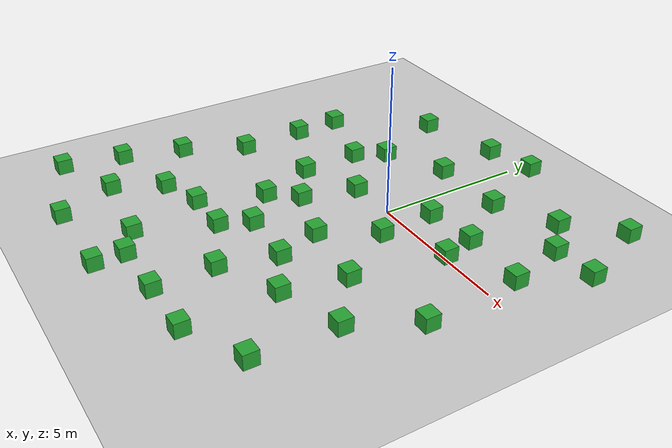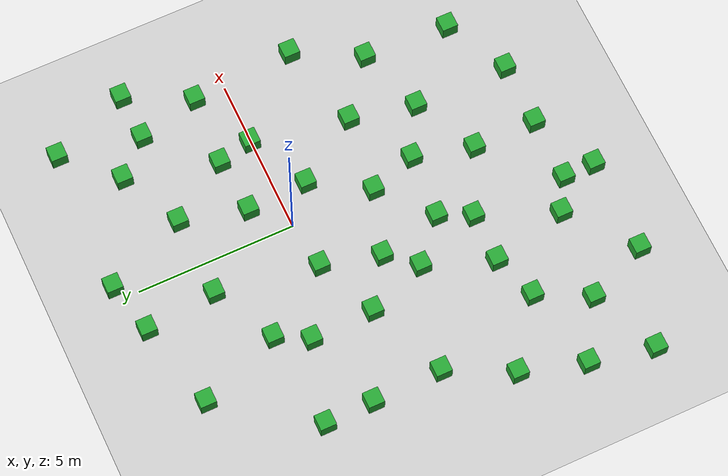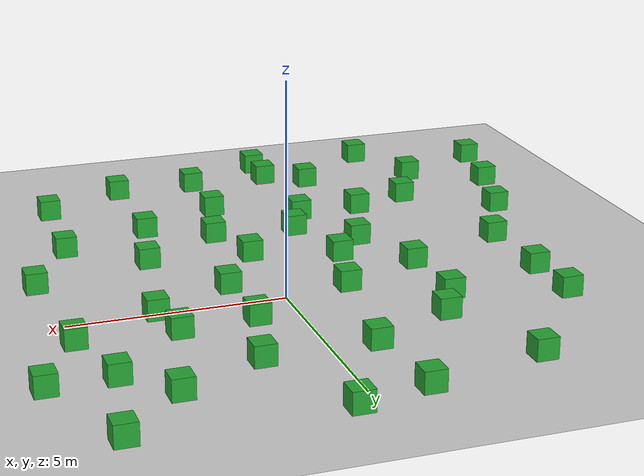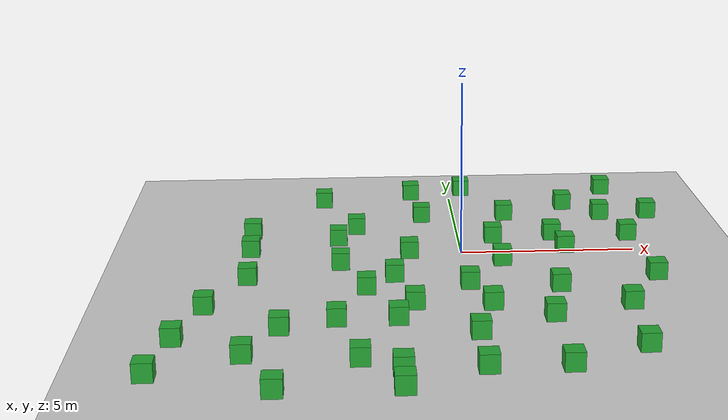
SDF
<sdf version="1.5">
 <world name="default">
  <spherical_coordinates>
   <latitude_deg>48.8789</latitude_deg>
   <longitude_deg>2.36778</longitude_deg>
   <surface_model>EARTH_WGS84</surface_model>
   <elevation>0</elevation>
   <heading_deg>0</heading_deg>
  </spherical_coordinates>
  <physics name="default_physics" default="0" type="ode">
   <real_time_update_rate>1000</real_time_update_rate>
   <max_step_size>0.001</max_step_size>
   <real_time_factor>1</real_time_factor>
   <max_contacts>20</max_contacts>
   <gravity>0 0 -9.81</gravity>
   <magnetic_field>0 2.1e-05 -4.3e-05</magnetic_field>
   <ode>
    <solver>
     <type>world</type>
     <min_step_size>0.0001</min_step_size>
     <iters>50</iters>
     <precon_iters>0</precon_iters>
     <sor>1.4</sor>
     <use_dynamic_moi_rescaling>1</use_dynamic_moi_rescaling>
    </solver>
    <constraints>
     <cfm>0</cfm>
     <erp>0.2</erp>
     <contact_max_correcting_vel>100</contact_max_correcting_vel>
     <contact_surface_layer>0.001</contact_surface_layer>
    </constraints>
   </ode>
  </physics>
  <atmosphere type="adiabatic">
   <temperature>298.15</temperature>
   <pressure>101325</pressure>
   <temperature_gradient>-0.0065</temperature_gradient>
  </atmosphere>
  <plugin name="wind" filename="libsphinx_wind.so">
   <magnitude_mean>0.0</magnitude_mean>
   <direction_mean>0.0</direction_mean>
   <elevation_mean>0.0</elevation_mean>
   <magnitude_time_for_rise>10.0</magnitude_time_for_rise>
   <direction_time_for_rise>30.0</direction_time_for_rise>
   <elevation_time_for_rise>0.0</elevation_time_for_rise>
   <magnitude_expr>val*(1+0.05*sin(2*pi*time/15))</magnitude_expr>
   <direction_expr>360*time/60</direction_expr>
   <elevation_expr>0.03*noise()</elevation_expr>
  </plugin>
  <light name="sun" type="directional">
   <pose>0 0 10 0 -0 0</pose>
   <diffuse>0.8 0.8 0.8 1</diffuse>
   <specular>0.2 0.2 0.2 1</specular>
   <attenuation>
    <range>1000</range>
    <constant>0.9</constant>
    <linear>0.01</linear>
    <quadratic>0.001</quadratic>
   </attenuation>
   <direction>-0.5 0.1 -0.9</direction>
  </light>
  <model name="ground_plane">
   <static>1</static>
   <link name="link">
    <collision name="collision">
     <geometry><plane><normal>0 0 1</normal><size>100 100</size></plane></geometry>
     <surface><friction><ode><mu>100</mu><mu2>50</mu2></ode></friction></surface>
    </collision>
    <visual name="visual">
     <cast_shadows>0</cast_shadows>
     <geometry><plane><normal>0 0 1</normal><size>100 100</size></plane></geometry>
     <material>
      <script><uri>file://media/materials/scripts/gazebo.material</uri><name>Gazebo/Grey</name></script>
     </material>
    </visual>
   </link>
  </model>
  <scene><ambient>0.4 0.4 0.4 1</ambient><background>0.7 0.7 0.7 1</background><shadows>0</shadows></scene>
  <model name="goal_box">
   <static>0</static>
   <pose>1.08169 -0.913257 0.25 0 -0 0</pose>
   <link name="goal_box">
    <inertial>
     <mass>1</mass>
     <inertia>
      <ixx>0.0166667</ixx>
      <iyy>0.0166667</iyy>
      <izz>0.0166667</izz>
      <ixy>0</ixy>
      <ixz>0</ixz>
      <iyz>0</iyz>
     </inertia>
    </inertial>
    <visual name="goal_box">
     <geometry><box><size>0.5 0.5 0.5</size></box></geometry>
     <material>
      <script><uri>file://media/materials/scripts/gazebo.material</uri><name>Gazebo/Green</name></script>
     </material>
    </visual>
    <collision name="collision">
     <geometry><box><size>0.5 0.5 0.5</size></box></geometry>
     <surface><friction><ode><mu>0</mu><mu2>0</mu2></ode></friction></surface>
    </collision>
   </link>
  </model>
  <model name="goal_box_clone">
   <static>0</static>
   <pose>2.76544 1.15096 0.25 0 -0 0</pose>
   <link name="goal_box">
    <inertial>
     <mass>1</mass>
     <inertia>
      <ixx>0.0166667</ixx>
      <iyy>0.0166667</iyy>
      <izz>0.0166667</izz>
      <ixy>0</ixy>
      <ixz>0</ixz>
      <iyz>0</iyz>
     </inertia>
    </inertial>
    <visual name="goal_box">
     <geometry><box><size>0.5 0.5 0.5</size></box></geometry>
     <material>
      <script><uri>file://media/materials/scripts/gazebo.material</uri><name>Gazebo/Green</name></script>
     </material>
    </visual>
    <collision name="collision">
     <geometry><box><size>0.5 0.5 0.5</size></box></geometry>
     <surface><friction><ode><mu>0</mu><mu2>0</mu2></ode></friction></surface>
    </collision>
   </link>
  </model>
  <model name="goal_box_clone_0">
   <static>0</static>
   <pose>3.00572 0.055078 0.25 0 -0 0</pose>
   <link name="goal_box">
    <inertial>
     <mass>1</mass>
     <inertia>
      <ixx>0.0166667</ixx>
      <iyy>0.0166667</iyy>
      <izz>0.0166667</izz>
      <ixy>0</ixy>
      <ixz>0</ixz>
      <iyz>0</iyz>
     </inertia>
    </inertial>
    <visual name="goal_box">
     <geometry><box><size>0.5 0.5 0.5</size></box></geometry>
     <material>
      <script><uri>file://media/materials/scripts/gazebo.material</uri><name>Gazebo/Green</name></script>
     </material>
    </visual>
    <collision name="collision">
     <geometry><box><size>0.5 0.5 0.5</size></box></geometry>
     <surface><friction><ode><mu>0</mu><mu2>0</mu2></ode></friction></surface>
    </collision>
   </link>
  </model>
  <model name="goal_box_clone_1">
   <static>0</static>
   <pose>1.54297 3.04749 0.25 0 -0 0</pose>
   <link name="goal_box">
    <inertial>
     <mass>1</mass>
     <inertia>
      <ixx>0.0166667</ixx>
      <iyy>0.0166667</iyy>
      <izz>0.0166667</izz>
      <ixy>0</ixy>
      <ixz>0</ixz>
      <iyz>0</iyz>
     </inertia>
    </inertial>
    <visual name="goal_box">
     <geometry><box><size>0.5 0.5 0.5</size></box></geometry>
     <material>
      <script><uri>file://media/materials/scripts/gazebo.material</uri><name>Gazebo/Green</name></script>
     </material>
    </visual>
    <collision name="collision">
     <geometry><box><size>0.5 0.5 0.5</size></box></geometry>
     <surface><friction><ode><mu>0</mu><mu2>0</mu2></ode></friction></surface>
    </collision>
   </link>
  </model>
  <model name="goal_box_clone_2">
   <static>0</static>
   <pose>1 1 0.25 0 -0 0</pose>
   <link name="goal_box">
    <inertial>
     <mass>1</mass>
     <inertia>
      <ixx>0.0166667</ixx>
      <iyy>0.0166667</iyy>
      <izz>0.0166667</izz>
      <ixy>0</ixy>
      <ixz>0</ixz>
      <iyz>0</iyz>
     </inertia>
    </inertial>
    <visual name="goal_box">
     <geometry><box><size>0.5 0.5 0.5</size></box></geometry>
     <material>
      <script><uri>file://media/materials/scripts/gazebo.material</uri><name>Gazebo/Green</name></script>
     </material>
    </visual>
    <collision name="collision">
     <geometry><box><size>0.5 0.5 0.5</size></box></geometry>
     <surface><friction><ode><mu>0</mu><mu2>0</mu2></ode></friction></surface>
    </collision>
   </link>
  </model>
  <model name="goal_box_clone_3">
   <static>0</static>
   <pose>5 5.4988 0.25 0 -0 0</pose>
   <link name="goal_box">
    <inertial>
     <mass>1</mass>
     <inertia>
      <ixx>0.0166667</ixx>
      <iyy>0.0166667</iyy>
      <izz>0.0166667</izz>
      <ixy>0</ixy>
      <ixz>0</ixz>
      <iyz>0</iyz>
     </inertia>
    </inertial>
    <visual name="goal_box">
     <geometry><box><size>0.5 0.5 0.5</size></box></geometry>
     <material>
      <script><uri>file://media/materials/scripts/gazebo.material</uri><name>Gazebo/Green</name></script>
     </material>
    </visual>
    <collision name="collision">
     <geometry><box><size>0.5 0.5 0.5</size></box></geometry>
     <surface><friction><ode><mu>0</mu><mu2>0</mu2></ode></friction></surface>
    </collision>
   </link>
  </model>
  <model name="goal_box_clone_4">
   <static>0</static>
   <pose>3.51124 4 0.25 0 -0 0</pose>
   <link name="goal_box">
    <inertial>
     <mass>1</mass>
     <inertia>
      <ixx>0.0166667</ixx>
      <iyy>0.0166667</iyy>
      <izz>0.0166667</izz>
      <ixy>0</ixy>
      <ixz>0</ixz>
      <iyz>0</iyz>
     </inertia>
    </inertial>
    <visual name="goal_box">
     <geometry><box><size>0.5 0.5 0.5</size></box></geometry>
     <material>
      <script><uri>file://media/materials/scripts/gazebo.material</uri><name>Gazebo/Green</name></script>
     </material>
    </visual>
    <collision name="collision">
     <geometry><box><size>0.5 0.5 0.5</size></box></geometry>
     <surface><friction><ode><mu>0</mu><mu2>0</mu2></ode></friction></surface>
    </collision>
   </link>
  </model>
  <model name="goal_box_clone_5">
   <static>0</static>
   <pose>6 3 0.25 0 -0 0</pose>
   <link name="goal_box">
    <inertial>
     <mass>1</mass>
     <inertia>
      <ixx>0.0166667</ixx>
      <iyy>0.0166667</iyy>
      <izz>0.0166667</izz>
      <ixy>0</ixy>
      <ixz>0</ixz>
      <iyz>0</iyz>
     </inertia>
    </inertial>
    <visual name="goal_box">
     <geometry><box><size>0.5 0.5 0.5</size></box></geometry>
     <material>
      <script><uri>file://media/materials/scripts/gazebo.material</uri><name>Gazebo/Green</name></script>
     </material>
    </visual>
    <collision name="collision">
     <geometry><box><size>0.5 0.5 0.5</size></box></geometry>
     <surface><friction><ode><mu>0</mu><mu2>0</mu2></ode></friction></surface>
    </collision>
   </link>
  </model>
  <model name="goal_box_clone_6">
   <static>0</static>
   <pose>5 1 0.25 0 -0 0</pose>
   <link name="goal_box">
    <inertial>
     <mass>1</mass>
     <inertia>
      <ixx>0.0166667</ixx>
      <iyy>0.0166667</iyy>
      <izz>0.0166667</izz>
      <ixy>0</ixy>
      <ixz>0</ixz>
      <iyz>0</iyz>
     </inertia>
    </inertial>
    <visual name="goal_box">
     <geometry><box><size>0.5 0.5 0.5</size></box></geometry>
     <material>
      <script><uri>file://media/materials/scripts/gazebo.material</uri><name>Gazebo/Green</name></script>
     </material>
    </visual>
    <collision name="collision">
     <geometry><box><size>0.5 0.5 0.5</size></box></geometry>
     <surface><friction><ode><mu>0</mu><mu2>0</mu2></ode></friction></surface>
    </collision>
   </link>
  </model>
  <model name="goal_box_clone_7">
   <static>0</static>
   <pose>4.52161 2.9465 0.25 0 -0 0</pose>
   <link name="goal_box">
    <inertial>
     <mass>1</mass>
     <inertia>
      <ixx>0.0166667</ixx>
      <iyy>0.0166667</iyy>
      <izz>0.0166667</izz>
      <ixy>0</ixy>
      <ixz>0</ixz>
      <iyz>0</iyz>
     </inertia>
    </inertial>
    <visual name="goal_box">
     <geometry><box><size>0.5 0.5 0.5</size></box></geometry>
     <material>
      <script><uri>file://media/materials/scripts/gazebo.material</uri><name>Gazebo/Green</name></script>
     </material>
    </visual>
    <collision name="collision">
     <geometry><box><size>0.5 0.5 0.5</size></box></geometry>
     <surface><friction><ode><mu>0</mu><mu2>0</mu2></ode></friction></surface>
    </collision>
   </link>
  </model>
  <model name="goal_box_clone_8">
   <static>0</static>
   <pose>2.43973 -2.96384 0.25 0 -0 0</pose>
   <link name="goal_box">
    <inertial>
     <mass>1</mass>
     <inertia>
      <ixx>0.0166667</ixx>
      <iyy>0.0166667</iyy>
      <izz>0.0166667</izz>
      <ixy>0</ixy>
      <ixz>0</ixz>
      <iyz>0</iyz>
     </inertia>
    </inertial>
    <visual name="goal_box">
     <geometry><box><size>0.5 0.5 0.5</size></box></geometry>
     <material>
      <script><uri>file://media/materials/scripts/gazebo.material</uri><name>Gazebo/Green</name></script>
     </material>
    </visual>
    <collision name="collision">
     <geometry><box><size>0.5 0.5 0.5</size></box></geometry>
     <surface><friction><ode><mu>0</mu><mu2>0</mu2></ode></friction></surface>
    </collision>
   </link>
  </model>
  <model name="goal_box_clone_9">
   <static>0</static>
   <pose>0.495163 -4.14676 0.25 0 -0 0</pose>
   <link name="goal_box">
    <inertial>
     <mass>1</mass>
     <inertia>
      <ixx>0.0166667</ixx>
      <iyy>0.0166667</iyy>
      <izz>0.0166667</izz>
      <ixy>0</ixy>
      <ixz>0</ixz>
      <iyz>0</iyz>
     </inertia>
    </inertial>
    <visual name="goal_box">
     <geometry><box><size>0.5 0.5 0.5</size></box></geometry>
     <material>
      <script><uri>file://media/materials/scripts/gazebo.material</uri><name>Gazebo/Green</name></script>
     </material>
    </visual>
    <collision name="collision">
     <geometry><box><size>0.5 0.5 0.5</size></box></geometry>
     <surface><friction><ode><mu>0</mu><mu2>0</mu2></ode></friction></surface>
    </collision>
   </link>
  </model>
  <model name="goal_box_clone_10">
   <static>0</static>
   <pose>0.019492 -2.65687 0.25 0 -0 0</pose>
   <link name="goal_box">
    <inertial>
     <mass>1</mass>
     <inertia>
      <ixx>0.0166667</ixx>
      <iyy>0.0166667</iyy>
      <izz>0.0166667</izz>
      <ixy>0</ixy>
      <ixz>0</ixz>
      <iyz>0</iyz>
     </inertia>
    </inertial>
    <visual name="goal_box">
     <geometry><box><size>0.5 0.5 0.5</size></box></geometry>
     <material>
      <script><uri>file://media/materials/scripts/gazebo.material</uri><name>Gazebo/Green</name></script>
     </material>
    </visual>
    <collision name="collision">
     <geometry><box><size>0.5 0.5 0.5</size></box></geometry>
     <surface><friction><ode><mu>0</mu><mu2>0</mu2></ode></friction></surface>
    </collision>
   </link>
  </model>
  <model name="goal_box_clone_11">
   <static>0</static>
   <pose>2 -5 0.25 0 -0 0</pose>
   <link name="goal_box">
    <inertial>
     <mass>1</mass>
     <inertia>
      <ixx>0.0166667</ixx>
      <iyy>0.0166667</iyy>
      <izz>0.0166667</izz>
      <ixy>0</ixy>
      <ixz>0</ixz>
      <iyz>0</iyz>
     </inertia>
    </inertial>
    <visual name="goal_box">
     <geometry><box><size>0.5 0.5 0.5</size></box></geometry>
     <material>
      <script><uri>file://media/materials/scripts/gazebo.material</uri><name>Gazebo/Green</name></script>
     </material>
    </visual>
    <collision name="collision">
     <geometry><box><size>0.5 0.5 0.5</size></box></geometry>
     <surface><friction><ode><mu>0</mu><mu2>0</mu2></ode></friction></surface>
    </collision>
   </link>
  </model>
  <model name="goal_box_clone_12">
   <static>0</static>
   <pose>5.21587 -2.25185 0.25 0 -0 0</pose>
   <link name="goal_box">
    <inertial>
     <mass>1</mass>
     <inertia>
      <ixx>0.0166667</ixx>
      <iyy>0.0166667</iyy>
      <izz>0.0166667</izz>
      <ixy>0</ixy>
      <ixz>0</ixz>
      <iyz>0</iyz>
     </inertia>
    </inertial>
    <visual name="goal_box">
     <geometry><box><size>0.5 0.5 0.5</size></box></geometry>
     <material>
      <script><uri>file://media/materials/scripts/gazebo.material</uri><name>Gazebo/Green</name></script>
     </material>
    </visual>
    <collision name="collision">
     <geometry><box><size>0.5 0.5 0.5</size></box></geometry>
     <surface><friction><ode><mu>0</mu><mu2>0</mu2></ode></friction></surface>
    </collision>
   </link>
  </model>
  <model name="goal_box_clone_13">
   <static>0</static>
   <pose>4.13548 -4.2925 0.25 0 -0 0</pose>
   <link name="goal_box">
    <inertial>
     <mass>1</mass>
     <inertia>
      <ixx>0.0166667</ixx>
      <iyy>0.0166667</iyy>
      <izz>0.0166667</izz>
      <ixy>0</ixy>
      <ixz>0</ixz>
      <iyz>0</iyz>
     </inertia>
    </inertial>
    <visual name="goal_box">
     <geometry><box><size>0.5 0.5 0.5</size></box></geometry>
     <material>
      <script><uri>file://media/materials/scripts/gazebo.material</uri><name>Gazebo/Green</name></script>
     </material>
    </visual>
    <collision name="collision">
     <geometry><box><size>0.5 0.5 0.5</size></box></geometry>
     <surface><friction><ode><mu>0</mu><mu2>0</mu2></ode></friction></surface>
    </collision>
   </link>
  </model>
  <model name="goal_box_clone_14">
   <static>0</static>
   <pose>-1.51482 -0.176208 0.25 0 -0 0</pose>
   <link name="goal_box">
    <inertial>
     <mass>1</mass>
     <inertia>
      <ixx>0.0166667</ixx>
      <iyy>0.0166667</iyy>
      <izz>0.0166667</izz>
      <ixy>0</ixy>
      <ixz>0</ixz>
      <iyz>0</iyz>
     </inertia>
    </inertial>
    <visual name="goal_box">
     <geometry><box><size>0.5 0.5 0.5</size></box></geometry>
     <material>
      <script><uri>file://media/materials/scripts/gazebo.material</uri><name>Gazebo/Green</name></script>
     </material>
    </visual>
    <collision name="collision">
     <geometry><box><size>0.5 0.5 0.5</size></box></geometry>
     <surface><friction><ode><mu>0</mu><mu2>0</mu2></ode></friction></surface>
    </collision>
   </link>
  </model>
  <model name="goal_box_clone_15">
   <static>0</static>
   <pose>-1 3 0.25 0 -0 0</pose>
   <link name="goal_box">
    <inertial>
     <mass>1</mass>
     <inertia>
      <ixx>0.0166667</ixx>
      <iyy>0.0166667</iyy>
      <izz>0.0166667</izz>
      <ixy>0</ixy>
      <ixz>0</ixz>
      <iyz>0</iyz>
     </inertia>
    </inertial>
    <visual name="goal_box">
     <geometry><box><size>0.5 0.5 0.5</size></box></geometry>
     <material>
      <script><uri>file://media/materials/scripts/gazebo.material</uri><name>Gazebo/Green</name></script>
     </material>
    </visual>
    <collision name="collision">
     <geometry><box><size>0.5 0.5 0.5</size></box></geometry>
     <surface><friction><ode><mu>0</mu><mu2>0</mu2></ode></friction></surface>
    </collision>
   </link>
  </model>
  <model name="goal_box_clone_16">
   <static>0</static>
   <pose>-3 2 0.25 0 -0 0</pose>
   <link name="goal_box">
    <inertial>
     <mass>1</mass>
     <inertia>
      <ixx>0.0166667</ixx>
      <iyy>0.0166667</iyy>
      <izz>0.0166667</izz>
      <ixy>0</ixy>
      <ixz>0</ixz>
      <iyz>0</iyz>
     </inertia>
    </inertial>
    <visual name="goal_box">
     <geometry><box><size>0.5 0.5 0.5</size></box></geometry>
     <material>
      <script><uri>file://media/materials/scripts/gazebo.material</uri><name>Gazebo/Green</name></script>
     </material>
    </visual>
    <collision name="collision">
     <geometry><box><size>0.5 0.5 0.5</size></box></geometry>
     <surface><friction><ode><mu>0</mu><mu2>0</mu2></ode></friction></surface>
    </collision>
   </link>
  </model>
  <model name="goal_box_clone_17">
   <static>0</static>
   <pose>-3.47392 -1 0.25 0 -0 0</pose>
   <link name="goal_box">
    <inertial>
     <mass>1</mass>
     <inertia>
      <ixx>0.0166667</ixx>
      <iyy>0.0166667</iyy>
      <izz>0.0166667</izz>
      <ixy>0</ixy>
      <ixz>0</ixz>
      <iyz>0</iyz>
     </inertia>
    </inertial>
    <visual name="goal_box">
     <geometry><box><size>0.5 0.5 0.5</size></box></geometry>
     <material>
      <script><uri>file://media/materials/scripts/gazebo.material</uri><name>Gazebo/Green</name></script>
     </material>
    </visual>
    <collision name="collision">
     <geometry><box><size>0.5 0.5 0.5</size></box></geometry>
     <surface><friction><ode><mu>0</mu><mu2>0</mu2></ode></friction></surface>
    </collision>
   </link>
  </model>
  <model name="goal_box_clone_18">
   <static>0</static>
   <pose>-3.53588 1 0.25 0 -0 0</pose>
   <link name="goal_box">
    <inertial>
     <mass>1</mass>
     <inertia>
      <ixx>0.0166667</ixx>
      <iyy>0.0166667</iyy>
      <izz>0.0166667</izz>
      <ixy>0</ixy>
      <ixz>0</ixz>
      <iyz>0</iyz>
     </inertia>
    </inertial>
    <visual name="goal_box">
     <geometry><box><size>0.5 0.5 0.5</size></box></geometry>
     <material>
      <script><uri>file://media/materials/scripts/gazebo.material</uri><name>Gazebo/Green</name></script>
     </material>
    </visual>
    <collision name="collision">
     <geometry><box><size>0.5 0.5 0.5</size></box></geometry>
     <surface><friction><ode><mu>0</mu><mu2>0</mu2></ode></friction></surface>
    </collision>
   </link>
  </model>
  <model name="goal_box_clone_19">
   <static>0</static>
   <pose>-2.78282 -2.88237 0.25 0 -0 0</pose>
   <link name="goal_box">
    <inertial>
     <mass>1</mass>
     <inertia>
      <ixx>0.0166667</ixx>
      <iyy>0.0166667</iyy>
      <izz>0.0166667</izz>
      <ixy>0</ixy>
      <ixz>0</ixz>
      <iyz>0</iyz>
     </inertia>
    </inertial>
    <visual name="goal_box">
     <geometry><box><size>0.5 0.5 0.5</size></box></geometry>
     <material>
      <script><uri>file://media/materials/scripts/gazebo.material</uri><name>Gazebo/Green</name></script>
     </material>
    </visual>
    <collision name="collision">
     <geometry><box><size>0.5 0.5 0.5</size></box></geometry>
     <surface><friction><ode><mu>0</mu><mu2>0</mu2></ode></friction></surface>
    </collision>
   </link>
  </model>
  <model name="goal_box_clone_20">
   <static>0</static>
   <pose>-2 -2 0.25 0 -0 0</pose>
   <link name="goal_box">
    <inertial>
     <mass>1</mass>
     <inertia>
      <ixx>0.0166667</ixx>
      <iyy>0.0166667</iyy>
      <izz>0.0166667</izz>
      <ixy>0</ixy>
      <ixz>0</ixz>
      <iyz>0</iyz>
     </inertia>
    </inertial>
    <visual name="goal_box">
     <geometry><box><size>0.5 0.5 0.5</size></box></geometry>
     <material>
      <script><uri>file://media/materials/scripts/gazebo.material</uri><name>Gazebo/Green</name></script>
     </material>
    </visual>
    <collision name="collision">
     <geometry><box><size>0.5 0.5 0.5</size></box></geometry>
     <surface><friction><ode><mu>0</mu><mu2>0</mu2></ode></friction></surface>
    </collision>
   </link>
  </model>
  <model name="goal_box_clone_21">
   <static>0</static>
   <pose>-2 -5 0.25 0 -0 0</pose>
   <link name="goal_box">
    <inertial>
     <mass>1</mass>
     <inertia>
      <ixx>0.0166667</ixx>
      <iyy>0.0166667</iyy>
      <izz>0.0166667</izz>
      <ixy>0</ixy>
      <ixz>0</ixz>
      <iyz>0</iyz>
     </inertia>
    </inertial>
    <visual name="goal_box">
     <geometry><box><size>0.5 0.5 0.5</size></box></geometry>
     <material>
      <script><uri>file://media/materials/scripts/gazebo.material</uri><name>Gazebo/Green</name></script>
     </material>
    </visual>
    <collision name="collision">
     <geometry><box><size>0.5 0.5 0.5</size></box></geometry>
     <surface><friction><ode><mu>0</mu><mu2>0</mu2></ode></friction></surface>
    </collision>
   </link>
  </model>
  <model name="goal_box_clone_22">
   <static>0</static>
   <pose>-1.53227 -4 0.25 0 -0 0</pose>
   <link name="goal_box">
    <inertial>
     <mass>1</mass>
     <inertia>
      <ixx>0.0166667</ixx>
      <iyy>0.0166667</iyy>
      <izz>0.0166667</izz>
      <ixy>0</ixy>
      <ixz>0</ixz>
      <iyz>0</iyz>
     </inertia>
    </inertial>
    <visual name="goal_box">
     <geometry><box><size>0.5 0.5 0.5</size></box></geometry>
     <material>
      <script><uri>file://media/materials/scripts/gazebo.material</uri><name>Gazebo/Green</name></script>
     </material>
    </visual>
    <collision name="collision">
     <geometry><box><size>0.5 0.5 0.5</size></box></geometry>
     <surface><friction><ode><mu>0</mu><mu2>0</mu2></ode></friction></surface>
    </collision>
   </link>
  </model>
  <model name="goal_box_clone_23">
   <static>0</static>
   <pose>-1.2305 5.24788 0.25 0 -0 0</pose>
   <link name="goal_box">
    <inertial>
     <mass>1</mass>
     <inertia>
      <ixx>0.0166667</ixx>
      <iyy>0.0166667</iyy>
      <izz>0.0166667</izz>
      <ixy>0</ixy>
      <ixz>0</ixz>
      <iyz>0</iyz>
     </inertia>
    </inertial>
    <visual name="goal_box">
     <geometry><box><size>0.5 0.5 0.5</size></box></geometry>
     <material>
      <script><uri>file://media/materials/scripts/gazebo.material</uri><name>Gazebo/Green</name></script>
     </material>
    </visual>
    <collision name="collision">
     <geometry><box><size>0.5 0.5 0.5</size></box></geometry>
     <surface><friction><ode><mu>0</mu><mu2>0</mu2></ode></friction></surface>
    </collision>
   </link>
  </model>
  <model name="goal_box_clone_24">
   <static>0</static>
   <pose>0.413814 5.62893 0.25 0 -0 0</pose>
   <link name="goal_box">
    <inertial>
     <mass>1</mass>
     <inertia>
      <ixx>0.0166667</ixx>
      <iyy>0.0166667</iyy>
      <izz>0.0166667</izz>
      <ixy>0</ixy>
      <ixz>0</ixz>
      <iyz>0</iyz>
     </inertia>
    </inertial>
    <visual name="goal_box">
     <geometry><box><size>0.5 0.5 0.5</size></box></geometry>
     <material>
      <script><uri>file://media/materials/scripts/gazebo.material</uri><name>Gazebo/Green</name></script>
     </material>
    </visual>
    <collision name="collision">
     <geometry><box><size>0.5 0.5 0.5</size></box></geometry>
     <surface><friction><ode><mu>0</mu><mu2>0</mu2></ode></friction></surface>
    </collision>
   </link>
  </model>
  <model name="goal_box_clone_25">
   <static>0</static>
   <pose>-4 4.58687 0.25 0 -0 0</pose>
   <link name="goal_box">
    <inertial>
     <mass>1</mass>
     <inertia>
      <ixx>0.0166667</ixx>
      <iyy>0.0166667</iyy>
      <izz>0.0166667</izz>
      <ixy>0</ixy>
      <ixz>0</ixz>
      <iyz>0</iyz>
     </inertia>
    </inertial>
    <visual name="goal_box">
     <geometry><box><size>0.5 0.5 0.5</size></box></geometry>
     <material>
      <script><uri>file://media/materials/scripts/gazebo.material</uri><name>Gazebo/Green</name></script>
     </material>
    </visual>
    <collision name="collision">
     <geometry><box><size>0.5 0.5 0.5</size></box></geometry>
     <surface><friction><ode><mu>0</mu><mu2>0</mu2></ode></friction></surface>
    </collision>
   </link>
  </model>
  <model name="goal_box_clone_26">
   <static>0</static>
   <pose>-6.07416 1.73526 0.25 0 -0 0</pose>
   <link name="goal_box">
    <inertial>
     <mass>1</mass>
     <inertia>
      <ixx>0.0166667</ixx>
      <iyy>0.0166667</iyy>
      <izz>0.0166667</izz>
      <ixy>0</ixy>
      <ixz>0</ixz>
      <iyz>0</iyz>
     </inertia>
    </inertial>
    <visual name="goal_box">
     <geometry><box><size>0.5 0.5 0.5</size></box></geometry>
     <material>
      <script><uri>file://media/materials/scripts/gazebo.material</uri><name>Gazebo/Green</name></script>
     </material>
    </visual>
    <collision name="collision">
     <geometry><box><size>0.5 0.5 0.5</size></box></geometry>
     <surface><friction><ode><mu>0</mu><mu2>0</mu2></ode></friction></surface>
    </collision>
   </link>
  </model>
  <model name="goal_box_clone_27">
   <static>0</static>
   <pose>-6 -2 0.25 0 -0 0</pose>
   <link name="goal_box">
    <inertial>
     <mass>1</mass>
     <inertia>
      <ixx>0.0166667</ixx>
      <iyy>0.0166667</iyy>
      <izz>0.0166667</izz>
      <ixy>0</ixy>
      <ixz>0</ixz>
      <iyz>0</iyz>
     </inertia>
    </inertial>
    <visual name="goal_box">
     <geometry><box><size>0.5 0.5 0.5</size></box></geometry>
     <material>
      <script><uri>file://media/materials/scripts/gazebo.material</uri><name>Gazebo/Green</name></script>
     </material>
    </visual>
    <collision name="collision">
     <geometry><box><size>0.5 0.5 0.5</size></box></geometry>
     <surface><friction><ode><mu>0</mu><mu2>0</mu2></ode></friction></surface>
    </collision>
   </link>
  </model>
  <model name="goal_box_clone_28">
   <static>0</static>
   <pose>-6.04017 0.189952 0.25 0 -0 0</pose>
   <link name="goal_box">
    <inertial>
     <mass>1</mass>
     <inertia>
      <ixx>0.0166667</ixx>
      <iyy>0.0166667</iyy>
      <izz>0.0166667</izz>
      <ixy>0</ixy>
      <ixz>0</ixz>
      <iyz>0</iyz>
     </inertia>
    </inertial>
    <visual name="goal_box">
     <geometry><box><size>0.5 0.5 0.5</size></box></geometry>
     <material>
      <script><uri>file://media/materials/scripts/gazebo.material</uri><name>Gazebo/Green</name></script>
     </material>
    </visual>
    <collision name="collision">
     <geometry><box><size>0.5 0.5 0.5</size></box></geometry>
     <surface><friction><ode><mu>0</mu><mu2>0</mu2></ode></friction></surface>
    </collision>
   </link>
  </model>
  <model name="goal_box_clone_26_clone">
   <static>0</static>
   <pose>-5.82236 -7.07472 0.25 0 -0 0</pose>
   <link name="goal_box">
    <inertial>
     <mass>1</mass>
     <inertia>
      <ixx>0.0166667</ixx>
      <iyy>0.0166667</iyy>
      <izz>0.0166667</izz>
      <ixy>0</ixy>
      <ixz>0</ixz>
      <iyz>0</iyz>
     </inertia>
    </inertial>
    <visual name="goal_box">
     <geometry><box><size>0.5 0.5 0.5</size></box></geometry>
     <material>
      <script><uri>file://media/materials/scripts/gazebo.material</uri><name>Gazebo/Green</name></script>
     </material>
    </visual>
    <collision name="collision">
     <geometry><box><size>0.5 0.5 0.5</size></box></geometry>
     <surface><friction><ode><mu>0</mu><mu2>0</mu2></ode></friction></surface>
    </collision>
   </link>
  </model>
  <model name="goal_box_clone_26_clone_0">
   <static>0</static>
   <pose>-5 -5.46908 0.25 0 -0 0</pose>
   <link name="goal_box">
    <inertial>
     <mass>1</mass>
     <inertia>
      <ixx>0.0166667</ixx>
      <iyy>0.0166667</iyy>
      <izz>0.0166667</izz>
      <ixy>0</ixy>
      <ixz>0</ixz>
      <iyz>0</iyz>
     </inertia>
    </inertial>
    <visual name="goal_box">
     <geometry><box><size>0.5 0.5 0.5</size></box></geometry>
     <material>
      <script><uri>file://media/materials/scripts/gazebo.material</uri><name>Gazebo/Green</name></script>
     </material>
    </visual>
    <collision name="collision">
     <geometry><box><size>0.5 0.5 0.5</size></box></geometry>
     <surface><friction><ode><mu>0</mu><mu2>0</mu2></ode></friction></surface>
    </collision>
   </link>
  </model>
  <model name="goal_box_clone_26_clone_1">
   <static>0</static>
   <pose>-3 -7.41421 0.25 0 -0 0</pose>
   <link name="goal_box">
    <inertial>
     <mass>1</mass>
     <inertia>
      <ixx>0.0166667</ixx>
      <iyy>0.0166667</iyy>
      <izz>0.0166667</izz>
      <ixy>0</ixy>
      <ixz>0</ixz>
      <iyz>0</iyz>
     </inertia>
    </inertial>
    <visual name="goal_box">
     <geometry><box><size>0.5 0.5 0.5</size></box></geometry>
     <material>
      <script><uri>file://media/materials/scripts/gazebo.material</uri><name>Gazebo/Green</name></script>
     </material>
    </visual>
    <collision name="collision">
     <geometry><box><size>0.5 0.5 0.5</size></box></geometry>
     <surface><friction><ode><mu>0</mu><mu2>0</mu2></ode></friction></surface>
    </collision>
   </link>
  </model>
  <model name="goal_box_clone_26_clone_2">
   <static>0</static>
   <pose>-5 -9 0.25 0 -0 0</pose>
   <link name="goal_box">
    <inertial>
     <mass>1</mass>
     <inertia>
      <ixx>0.0166667</ixx>
      <iyy>0.0166667</iyy>
      <izz>0.0166667</izz>
      <ixy>0</ixy>
      <ixz>0</ixz>
      <iyz>0</iyz>
     </inertia>
    </inertial>
    <visual name="goal_box">
     <geometry><box><size>0.5 0.5 0.5</size></box></geometry>
     <material>
      <script><uri>file://media/materials/scripts/gazebo.material</uri><name>Gazebo/Green</name></script>
     </material>
    </visual>
    <collision name="collision">
     <geometry><box><size>0.5 0.5 0.5</size></box></geometry>
     <surface><friction><ode><mu>0</mu><mu2>0</mu2></ode></friction></surface>
    </collision>
   </link>
  </model>
  <model name="goal_box_clone_26_clone_3">
   <static>0</static>
   <pose>-8 -8 0.25 0 -0 0</pose>
   <link name="goal_box">
    <inertial>
     <mass>1</mass>
     <inertia>
      <ixx>0.0166667</ixx>
      <iyy>0.0166667</iyy>
      <izz>0.0166667</izz>
      <ixy>0</ixy>
      <ixz>0</ixz>
      <iyz>0</iyz>
     </inertia>
    </inertial>
    <visual name="goal_box">
     <geometry><box><size>0.5 0.5 0.5</size></box></geometry>
     <material>
      <script><uri>file://media/materials/scripts/gazebo.material</uri><name>Gazebo/Green</name></script>
     </material>
    </visual>
    <collision name="collision">
     <geometry><box><size>0.5 0.5 0.5</size></box></geometry>
     <surface><friction><ode><mu>0</mu><mu2>0</mu2></ode></friction></surface>
    </collision>
   </link>
  </model>
  <model name="goal_box_clone_26_clone_4">
   <static>0</static>
   <pose>-7.59664 -6 0.25 0 -0 0</pose>
   <link name="goal_box">
    <inertial>
     <mass>1</mass>
     <inertia>
      <ixx>0.0166667</ixx>
      <iyy>0.0166667</iyy>
      <izz>0.0166667</izz>
      <ixy>0</ixy>
      <ixz>0</ixz>
      <iyz>0</iyz>
     </inertia>
    </inertial>
    <visual name="goal_box">
     <geometry><box><size>0.5 0.5 0.5</size></box></geometry>
     <material>
      <script><uri>file://media/materials/scripts/gazebo.material</uri><name>Gazebo/Green</name></script>
     </material>
    </visual>
    <collision name="collision">
     <geometry><box><size>0.5 0.5 0.5</size></box></geometry>
     <surface><friction><ode><mu>0</mu><mu2>0</mu2></ode></friction></surface>
    </collision>
   </link>
  </model>
  <model name="goal_box_clone_26_clone_5">
   <static>0</static>
   <pose>-7 -4 0.25 0 -0 0</pose>
   <link name="goal_box">
    <inertial>
     <mass>1</mass>
     <inertia>
      <ixx>0.0166667</ixx>
      <iyy>0.0166667</iyy>
      <izz>0.0166667</izz>
      <ixy>0</ixy>
      <ixz>0</ixz>
      <iyz>0</iyz>
     </inertia>
    </inertial>
    <visual name="goal_box">
     <geometry><box><size>0.5 0.5 0.5</size></box></geometry>
     <material>
      <script><uri>file://media/materials/scripts/gazebo.material</uri><name>Gazebo/Green</name></script>
     </material>
    </visual>
    <collision name="collision">
     <geometry><box><size>0.5 0.5 0.5</size></box></geometry>
     <surface><friction><ode><mu>0</mu><mu2>0</mu2></ode></friction></surface>
    </collision>
   </link>
  </model>
  <model name="goal_box_clone_26_clone_6">
   <static>0</static>
   <pose>0 -8 0.25 0 -0 0</pose>
   <link name="goal_box">
    <inertial>
     <mass>1</mass>
     <inertia>
      <ixx>0.0166667</ixx>
      <iyy>0.0166667</iyy>
      <izz>0.0166667</izz>
      <ixy>0</ixy>
      <ixz>0</ixz>
      <iyz>0</iyz>
     </inertia>
    </inertial>
    <visual name="goal_box">
     <geometry><box><size>0.5 0.5 0.5</size></box></geometry>
     <material>
      <script><uri>file://media/materials/scripts/gazebo.material</uri><name>Gazebo/Green</name></script>
     </material>
    </visual>
    <collision name="collision">
     <geometry><box><size>0.5 0.5 0.5</size></box></geometry>
     <surface><friction><ode><mu>0</mu><mu2>0</mu2></ode></friction></surface>
    </collision>
   </link>
  </model>
  <model name="goal_box_clone_26_clone_7">
   <static>0</static>
   <pose>0 -6 0.25 0 -0 0</pose>
   <link name="goal_box">
    <inertial>
     <mass>1</mass>
     <inertia>
      <ixx>0.0166667</ixx>
      <iyy>0.0166667</iyy>
      <izz>0.0166667</izz>
      <ixy>0</ixy>
      <ixz>0</ixz>
      <iyz>0</iyz>
     </inertia>
    </inertial>
    <visual name="goal_box">
     <geometry><box><size>0.5 0.5 0.5</size></box></geometry>
     <material>
      <script><uri>file://media/materials/scripts/gazebo.material</uri><name>Gazebo/Green</name></script>
     </material>
    </visual>
    <collision name="collision">
     <geometry><box><size>0.5 0.5 0.5</size></box></geometry>
     <surface><friction><ode><mu>0</mu><mu2>0</mu2></ode></friction></surface>
    </collision>
   </link>
  </model>
  <model name="goal_box_clone_26_clone_8">
   <static>0</static>
   <pose>-2 -8 0.25 0 -0 0</pose>
   <link name="goal_box">
    <inertial>
     <mass>1</mass>
     <inertia>
      <ixx>0.0166667</ixx>
      <iyy>0.0166667</iyy>
      <izz>0.0166667</izz>
      <ixy>0</ixy>
      <ixz>0</ixz>
      <iyz>0</iyz>
     </inertia>
    </inertial>
    <visual name="goal_box">
     <geometry><box><size>0.5 0.5 0.5</size></box></geometry>
     <material>
      <script><uri>file://media/materials/scripts/gazebo.material</uri><name>Gazebo/Green</name></script>
     </material>
    </visual>
    <collision name="collision">
     <geometry><box><size>0.5 0.5 0.5</size></box></geometry>
     <surface><friction><ode><mu>0</mu><mu2>0</mu2></ode></friction></surface>
    </collision>
   </link>
  </model>
  <model name="goal_box_clone_26_clone_9">
   <static>0</static>
   <pose>-2 -9 0.25 0 -0 0</pose>
   <link name="goal_box">
    <inertial>
     <mass>1</mass>
     <inertia>
      <ixx>0.0166667</ixx>
      <iyy>0.0166667</iyy>
      <izz>0.0166667</izz>
      <ixy>0</ixy>
      <ixz>0</ixz>
      <iyz>0</iyz>
     </inertia>
    </inertial>
    <visual name="goal_box">
     <geometry><box><size>0.5 0.5 0.5</size></box></geometry>
     <material>
      <script><uri>file://media/materials/scripts/gazebo.material</uri><name>Gazebo/Green</name></script>
     </material>
    </visual>
    <collision name="collision">
     <geometry><box><size>0.5 0.5 0.5</size></box></geometry>
     <surface><friction><ode><mu>0</mu><mu2>0</mu2></ode></friction></surface>
    </collision>
   </link>
  </model>
  <model name="goal_box_clone_26_clone_10">
   <static>0</static>
   <pose>-3.57126 -5 0.25 0 -0 0</pose>
   <link name="goal_box">
    <inertial>
     <mass>1</mass>
     <inertia>
      <ixx>0.0166667</ixx>
      <iyy>0.0166667</iyy>
      <izz>0.0166667</izz>
      <ixy>0</ixy>
      <ixz>0</ixz>
      <iyz>0</iyz>
     </inertia>
    </inertial>
    <visual name="goal_box">
     <geometry><box><size>0.5 0.5 0.5</size></box></geometry>
     <material>
      <script><uri>file://media/materials/scripts/gazebo.material</uri><name>Gazebo/Green</name></script>
     </material>
    </visual>
    <collision name="collision">
     <geometry><box><size>0.5 0.5 0.5</size></box></geometry>
     <surface><friction><ode><mu>0</mu><mu2>0</mu2></ode></friction></surface>
    </collision>
   </link>
  </model>
  <model name="goal_box_clone_26_clone_11">
   <static>0</static>
   <pose>4 -7 0.25 0 -0 0</pose>
   <link name="goal_box">
    <inertial>
     <mass>1</mass>
     <inertia>
      <ixx>0.0166667</ixx>
      <iyy>0.0166667</iyy>
      <izz>0.0166667</izz>
      <ixy>0</ixy>
      <ixz>0</ixz>
      <iyz>0</iyz>
     </inertia>
    </inertial>
    <visual name="goal_box">
     <geometry><box><size>0.5 0.5 0.5</size></box></geometry>
     <material>
      <script><uri>file://media/materials/scripts/gazebo.material</uri><name>Gazebo/Green</name></script>
     </material>
    </visual>
    <collision name="collision">
     <geometry><box><size>0.5 0.5 0.5</size></box></geometry>
     <surface><friction><ode><mu>0</mu><mu2>0</mu2></ode></friction></surface>
    </collision>
   </link>
  </model>
  <model name="goal_box_clone_26_clone_12">
   <static>0</static>
   <pose>2 -8 0.25 0 -0 0</pose>
   <link name="goal_box">
    <inertial>
     <mass>1</mass>
     <inertia>
      <ixx>0.0166667</ixx>
      <iyy>0.0166667</iyy>
      <izz>0.0166667</izz>
      <ixy>0</ixy>
      <ixz>0</ixz>
      <iyz>0</iyz>
     </inertia>
    </inertial>
    <visual name="goal_box">
     <geometry><box><size>0.5 0.5 0.5</size></box></geometry>
     <material>
      <script><uri>file://media/materials/scripts/gazebo.material</uri><name>Gazebo/Green</name></script>
     </material>
    </visual>
    <collision name="collision">
     <geometry><box><size>0.5 0.5 0.5</size></box></geometry>
     <surface><friction><ode><mu>0</mu><mu2>0</mu2></ode></friction></surface>
    </collision>
   </link>
  </model>
 </world>
</sdf>
